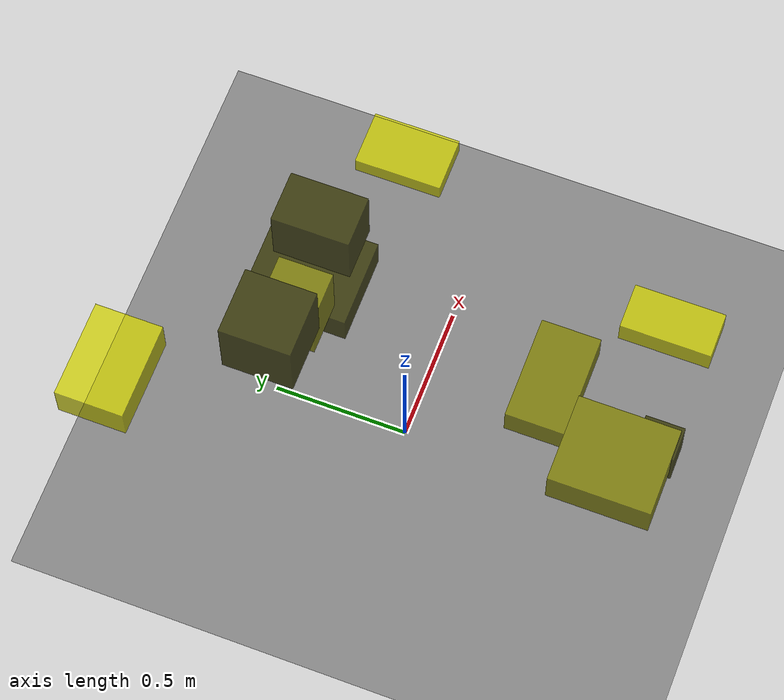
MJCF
<?xml version="1.0"?>
<mujoco model="obstacle_scene">
  <compiler angle="radian" coordinate="local"/>
  <option timestep="0.001" gravity="0 0 -9.81"/>

  <asset>
    <material name="obstacle_mat" rgba="0.8 0.8 0.0 0.8"/>
    <material name="ground_mat" rgba="0.5 0.5 0.5 1"/>
  </asset>

  <worldbody>
    <!-- Ground plane -->
    <geom name="ground" type="plane" size="3 3 0.1" material="ground_mat"/>

    <!-- Obstacles -->
    <body name="obstacle_0" pos="0.270800 0.411704 0.869208">
      <geom name="obs_0" type="box" size="0.094184 0.141401 0.120599" rgba="0.2 0.2 0.0 0.8"/>
    </body>
    <body name="obstacle_1" pos="0.031445 0.410489 0.708514">
      <geom name="obs_1" type="box" size="0.096349 0.099167 0.119139" rgba="0.5 0.5 0.0 0.8"/>
    </body>
    <body name="obstacle_2" pos="0.875930 0.322617 0.385242">
      <geom name="obs_2" type="box" size="0.103615 0.163572 0.035632" rgba="0.8 0.8 0.0 0.8"/>
    </body>
    <body name="obstacle_3" pos="-0.051736 -0.924319 0.748991">
      <geom name="obs_3" type="box" size="0.060830 0.069390 0.080220" rgba="0.2 0.2 0.0 0.8"/>
    </body>
    <body name="obstacle_4" pos="-0.174681 -0.805150 0.786121">
      <geom name="obs_4" type="box" size="0.159358 0.180571 0.072476" rgba="0.5 0.5 0.0 0.8"/>
    </body>
    <body name="obstacle_5" pos="-0.577016 0.805600 1.122678">
      <geom name="obs_5" type="box" size="0.168982 0.118841 0.067844" rgba="0.8 0.8 0.0 0.8"/>
    </body>
    <body name="obstacle_6" pos="0.384132 0.510941 0.203286">
      <geom name="obs_6" type="box" size="0.169434 0.196565 0.065742" rgba="0.2 0.2 0.0 0.8"/>
    </body>
    <body name="obstacle_7" pos="0.293307 -0.454364 0.178773">
      <geom name="obs_7" type="box" size="0.197646 0.112790 0.061841" rgba="0.5 0.5 0.0 0.8"/>
    </body>
    <body name="obstacle_8" pos="0.588703 -0.794414 0.329761">
      <geom name="obs_8" type="box" size="0.086442 0.170181 0.050523" rgba="0.8 0.8 0.0 0.8"/>
    </body>
    <body name="obstacle_9" pos="-0.141422 0.437731 0.830392">
      <geom name="obs_9" type="box" size="0.122352 0.129809 0.134736" rgba="0.2 0.2 0.0 0.8"/>
    </body>
  </worldbody>
</mujoco>
